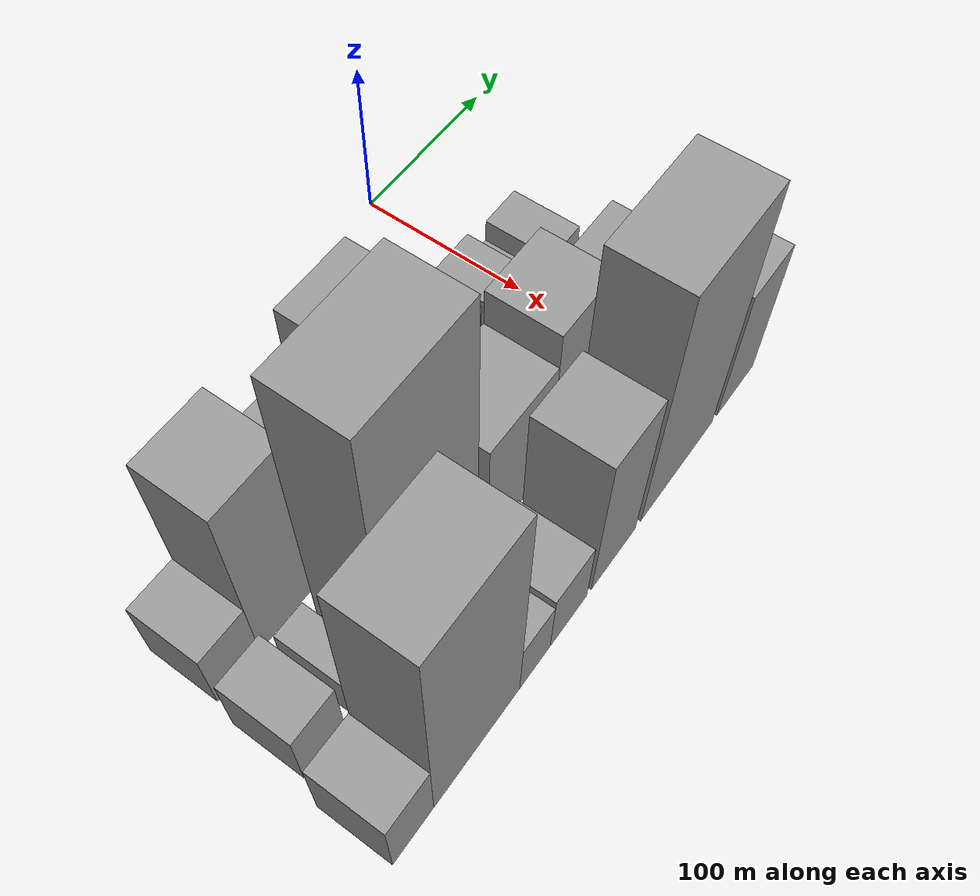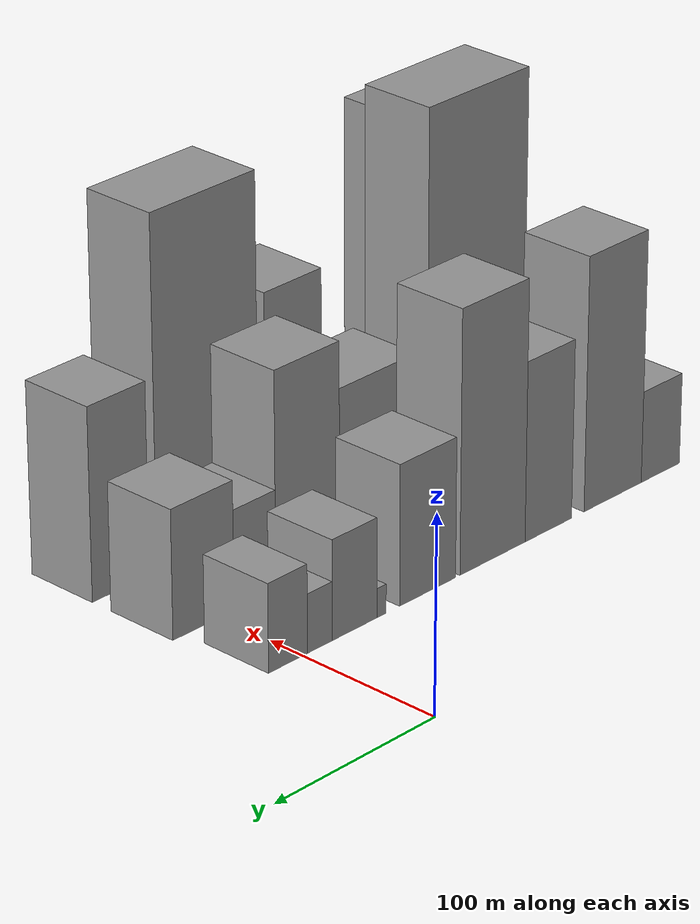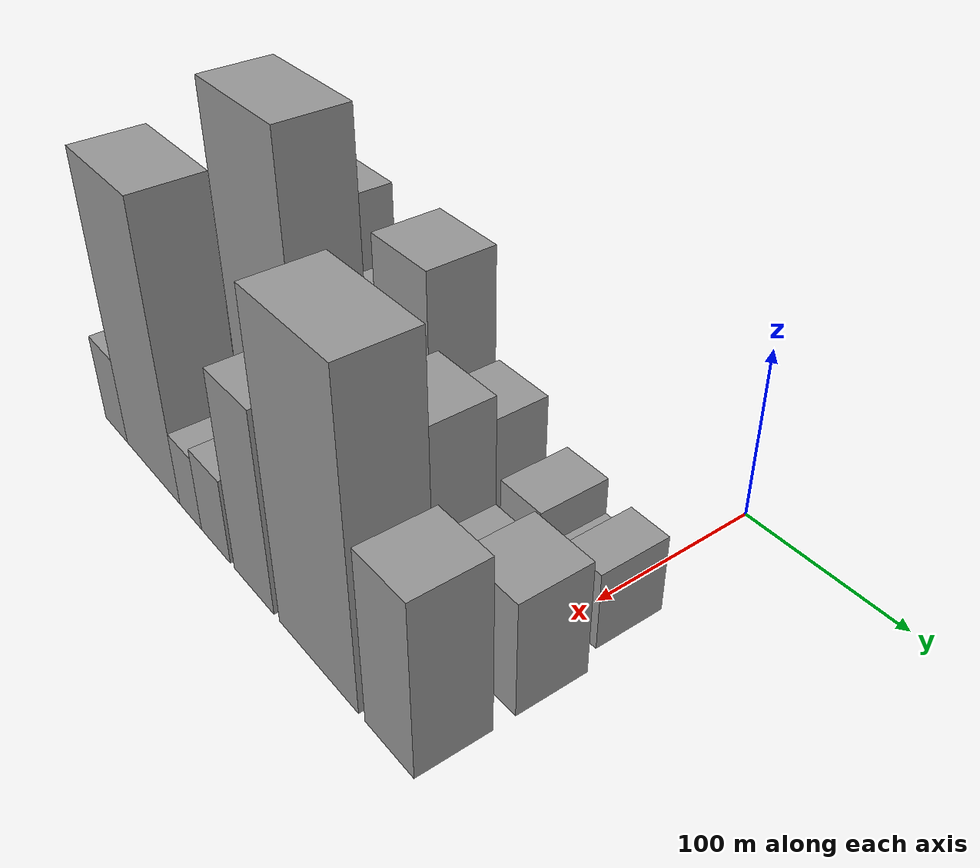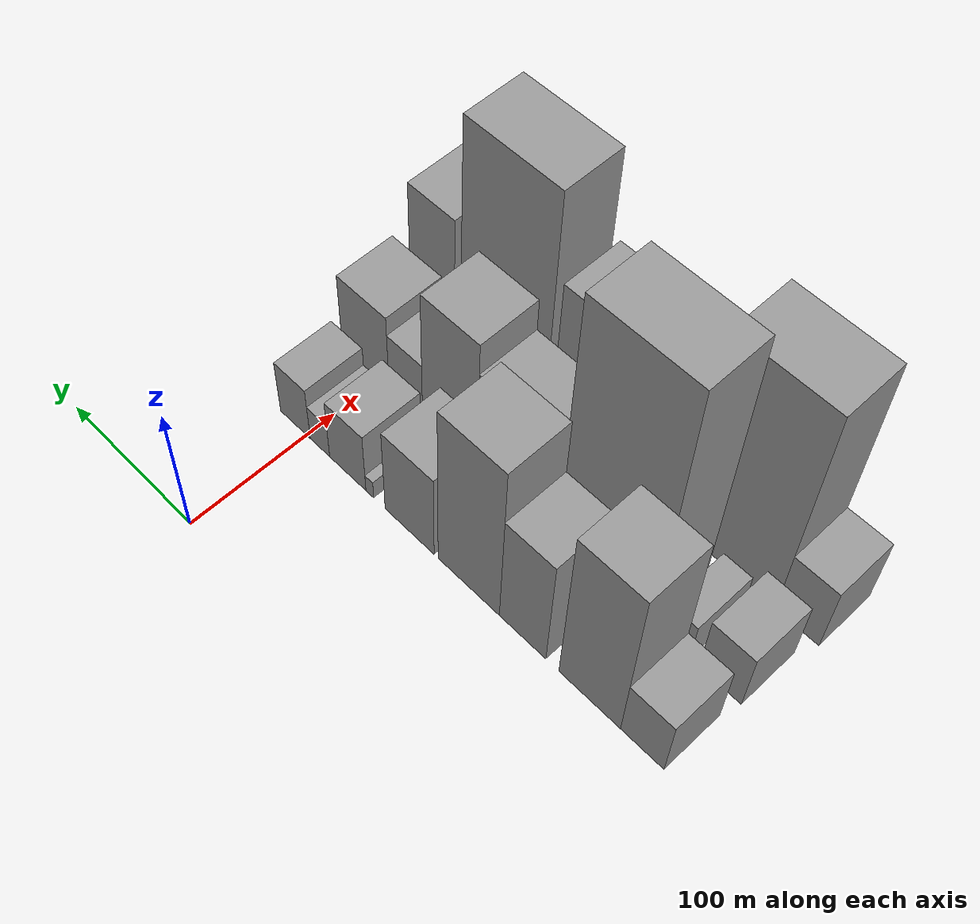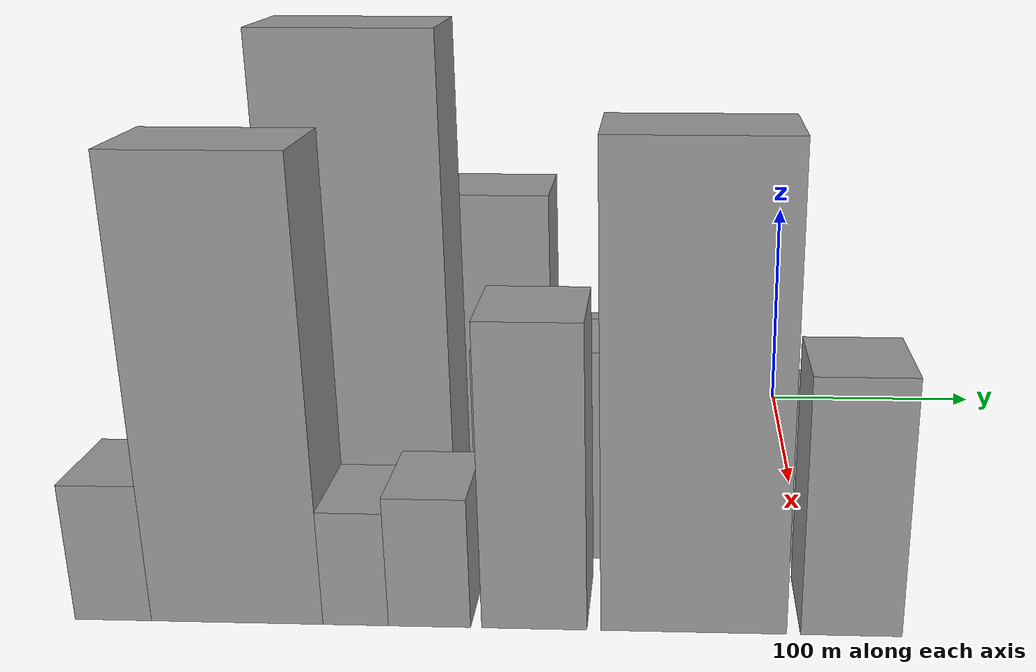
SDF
<sdf version="1.6">
 <world name="default">
  <model name="building_9">
   <static>1</static>
   <pose>100.0000 -246.7180 0 0.000000 0.000000 0.000000</pose>
   <link name="link">
    <pose>0 0 24.00 0 0 0</pose>
    <collision name="collision"><geometry><box><size>40.0000 28.3378 48.0000</size></box></geometry></collision>
    <visual name="visual">
     <cast_shadows>0</cast_shadows>
     <geometry><box><size>40.0000 28.3378 48.0000</size></box></geometry>
     <material>
      <script>
       <uri>model://grey_wall/materials/scripts</uri>
       <uri>model://grey_wall/materials/textures</uri>
       <name>vrc/grey_wall</name>
      </script>
     </material>
    </visual>
   </link>
  </model>
  <model name="building_10">
   <static>1</static>
   <pose>100.0000 -211.7277 0 0.000000 0.000000 0.000000</pose>
   <link name="link">
    <pose>0 0 66.00 0 0 0</pose>
    <collision name="collision"><geometry><box><size>40.0000 41.6429 132.0000</size></box></geometry></collision>
    <visual name="visual">
     <cast_shadows>0</cast_shadows>
     <geometry><box><size>40.0000 41.6429 132.0000</size></box></geometry>
     <material>
      <script>
       <uri>model://grey_wall/materials/scripts</uri>
       <uri>model://grey_wall/materials/textures</uri>
       <name>vrc/grey_wall</name>
      </script>
     </material>
    </visual>
   </link>
  </model>
  <model name="building_11">
   <static>1</static>
   <pose>100.0000 -165.4333 0 0.000000 0.000000 0.000000</pose>
   <link name="link">
    <pose>0 0 46.50 0 0 0</pose>
    <collision name="collision"><geometry><box><size>40.0000 32.9459 93.0000</size></box></geometry></collision>
    <visual name="visual">
     <cast_shadows>0</cast_shadows>
     <geometry><box><size>40.0000 32.9459 93.0000</size></box></geometry>
     <material>
      <script>
       <uri>model://grey_wall/materials/scripts</uri>
       <uri>model://grey_wall/materials/textures</uri>
       <name>vrc/grey_wall</name>
      </script>
     </material>
    </visual>
   </link>
  </model>
  <model name="building_12">
   <static>1</static>
   <pose>100.0000 -126.4425 0 0.000000 0.000000 0.000000</pose>
   <link name="link">
    <pose>0 0 67.50 0 0 0</pose>
    <collision name="collision"><geometry><box><size>40.0000 45.0357 135.0000</size></box></geometry></collision>
    <visual name="visual">
     <cast_shadows>0</cast_shadows>
     <geometry><box><size>40.0000 45.0357 135.0000</size></box></geometry>
     <material>
      <script>
       <uri>model://grey_wall/materials/scripts</uri>
       <uri>model://grey_wall/materials/textures</uri>
       <name>vrc/grey_wall</name>
      </script>
     </material>
    </visual>
   </link>
  </model>
  <model name="building_13">
   <static>1</static>
   <pose>100.0000 -82.1082 0 0.000000 0.000000 0.000000</pose>
   <link name="link">
    <pose>0 0 36.00 0 0 0</pose>
    <collision name="collision"><geometry><box><size>40.0000 37.6330 72.0000</size></box></geometry></collision>
    <visual name="visual">
     <cast_shadows>0</cast_shadows>
     <geometry><box><size>40.0000 37.6330 72.0000</size></box></geometry>
     <material>
      <script>
       <uri>model://grey_wall/materials/scripts</uri>
       <uri>model://grey_wall/materials/textures</uri>
       <name>vrc/grey_wall</name>
      </script>
     </material>
    </visual>
   </link>
  </model>
  <model name="building_14">
   <static>1</static>
   <pose>100.0000 -51.2164 0 0.000000 0.000000 0.000000</pose>
   <link name="link">
    <pose>0 0 7.50 0 0 0</pose>
    <collision name="collision"><geometry><box><size>40.0000 6.1504 15.0000</size></box></geometry></collision>
    <visual name="visual">
     <cast_shadows>0</cast_shadows>
     <geometry><box><size>40.0000 6.1504 15.0000</size></box></geometry>
     <material>
      <script>
       <uri>model://grey_wall/materials/scripts</uri>
       <uri>model://grey_wall/materials/textures</uri>
       <name>vrc/grey_wall</name>
      </script>
     </material>
    </visual>
   </link>
  </model>
  <model name="building_15">
   <static>1</static>
   <pose>100.0000 -33.5812 0 0.000000 0.000000 0.000000</pose>
   <link name="link">
    <pose>0 0 25.50 0 0 0</pose>
    <collision name="collision"><geometry><box><size>40.0000 29.1201 51.0000</size></box></geometry></collision>
    <visual name="visual">
     <cast_shadows>0</cast_shadows>
     <geometry><box><size>40.0000 29.1201 51.0000</size></box></geometry>
     <material>
      <script>
       <uri>model://grey_wall/materials/scripts</uri>
       <uri>model://grey_wall/materials/textures</uri>
       <name>vrc/grey_wall</name>
      </script>
     </material>
    </visual>
   </link>
  </model>
  <model name="building_16">
   <static>1</static>
   <pose>100.0000 -11.0467 0 0.000000 0.000000 0.000000</pose>
   <link name="link">
    <pose>0 0 15.00 0 0 0</pose>
    <collision name="collision"><geometry><box><size>40.0000 15.9488 30.0000</size></box></geometry></collision>
    <visual name="visual">
     <cast_shadows>0</cast_shadows>
     <geometry><box><size>40.0000 15.9488 30.0000</size></box></geometry>
     <material>
      <script>
       <uri>model://grey_wall/materials/scripts</uri>
       <uri>model://grey_wall/materials/textures</uri>
       <name>vrc/grey_wall</name>
      </script>
     </material>
    </visual>
   </link>
  </model>
  <model name="building_17">
   <static>1</static>
   <pose>100.0000 9.3485 0 0.000000 0.000000 0.000000</pose>
   <link name="link">
    <pose>0 0 22.50 0 0 0</pose>
    <collision name="collision"><geometry><box><size>40.0000 24.8416 45.0000</size></box></geometry></collision>
    <visual name="visual">
     <cast_shadows>0</cast_shadows>
     <geometry><box><size>40.0000 24.8416 45.0000</size></box></geometry>
     <material>
      <script>
       <uri>model://grey_wall/materials/scripts</uri>
       <uri>model://grey_wall/materials/textures</uri>
       <name>vrc/grey_wall</name>
      </script>
     </material>
    </visual>
   </link>
  </model>
  <model name="building_42">
   <static>1</static>
   <pose>152.0000 -250.4712 0 0.000000 0.000000 0.000000</pose>
   <link name="link">
    <pose>0 0 24.00 0 0 0</pose>
    <collision name="collision"><geometry><box><size>40.0000 27.5900 48.0000</size></box></geometry></collision>
    <visual name="visual">
     <cast_shadows>0</cast_shadows>
     <geometry><box><size>40.0000 27.5900 48.0000</size></box></geometry>
     <material>
      <script>
       <uri>model://grey_wall/materials/scripts</uri>
       <uri>model://grey_wall/materials/textures</uri>
       <name>vrc/grey_wall</name>
      </script>
     </material>
    </visual>
   </link>
  </model>
  <model name="building_43">
   <static>1</static>
   <pose>152.0000 -221.2421 0 0.000000 0.000000 0.000000</pose>
   <link name="link">
    <pose>0 0 16.50 0 0 0</pose>
    <collision name="collision"><geometry><box><size>40.0000 18.8682 33.0000</size></box></geometry></collision>
    <visual name="visual">
     <cast_shadows>0</cast_shadows>
     <geometry><box><size>40.0000 18.8682 33.0000</size></box></geometry>
     <material>
      <script>
       <uri>model://grey_wall/materials/scripts</uri>
       <uri>model://grey_wall/materials/textures</uri>
       <name>vrc/grey_wall</name>
      </script>
     </material>
    </visual>
   </link>
  </model>
  <model name="building_44">
   <static>1</static>
   <pose>152.0000 -171.8982 0 0.000000 0.000000 0.000000</pose>
   <link name="link">
    <pose>0 0 103.50 0 0 0</pose>
    <collision name="collision"><geometry><box><size>40.0000 67.8195 207.0000</size></box></geometry></collision>
    <visual name="visual">
     <cast_shadows>0</cast_shadows>
     <geometry><box><size>40.0000 67.8195 207.0000</size></box></geometry>
     <material>
      <script>
       <uri>model://grey_wall/materials/scripts</uri>
       <uri>model://grey_wall/materials/textures</uri>
       <name>vrc/grey_wall</name>
      </script>
     </material>
    </visual>
   </link>
  </model>
  <model name="building_45">
   <static>1</static>
   <pose>152.0000 -104.2163 0 0.000000 0.000000 0.000000</pose>
   <link name="link">
    <pose>0 0 43.50 0 0 0</pose>
    <collision name="collision"><geometry><box><size>40.0000 51.5444 87.0000</size></box></geometry></collision>
    <visual name="visual">
     <cast_shadows>0</cast_shadows>
     <geometry><box><size>40.0000 51.5444 87.0000</size></box></geometry>
     <material>
      <script>
       <uri>model://grey_wall/materials/scripts</uri>
       <uri>model://grey_wall/materials/textures</uri>
       <name>vrc/grey_wall</name>
      </script>
     </material>
    </visual>
   </link>
  </model>
  <model name="building_46">
   <static>1</static>
   <pose>152.0000 -57.3280 0 0.000000 0.000000 0.000000</pose>
   <link name="link">
    <pose>0 0 55.50 0 0 0</pose>
    <collision name="collision"><geometry><box><size>40.0000 42.2322 111.0000</size></box></geometry></collision>
    <visual name="visual">
     <cast_shadows>0</cast_shadows>
     <geometry><box><size>40.0000 42.2322 111.0000</size></box></geometry>
     <material>
      <script>
       <uri>model://grey_wall/materials/scripts</uri>
       <uri>model://grey_wall/materials/textures</uri>
       <name>vrc/grey_wall</name>
      </script>
     </material>
    </visual>
   </link>
  </model>
  <model name="building_47">
   <static>1</static>
   <pose>152.0000 -22.6772 0 0.000000 0.000000 0.000000</pose>
   <link name="link">
    <pose>0 0 25.50 0 0 0</pose>
    <collision name="collision"><geometry><box><size>40.0000 27.0694 51.0000</size></box></geometry></collision>
    <visual name="visual">
     <cast_shadows>0</cast_shadows>
     <geometry><box><size>40.0000 27.0694 51.0000</size></box></geometry>
     <material>
      <script>
       <uri>model://grey_wall/materials/scripts</uri>
       <uri>model://grey_wall/materials/textures</uri>
       <name>vrc/grey_wall</name>
      </script>
     </material>
    </visual>
   </link>
  </model>
  <model name="building_48">
   <static>1</static>
   <pose>152.0000 10.2735 0 0.000000 0.000000 0.000000</pose>
   <link name="link">
    <pose>0 0 33.00 0 0 0</pose>
    <collision name="collision"><geometry><box><size>40.0000 38.8319 66.0000</size></box></geometry></collision>
    <visual name="visual">
     <cast_shadows>0</cast_shadows>
     <geometry><box><size>40.0000 38.8319 66.0000</size></box></geometry>
     <material>
      <script>
       <uri>model://grey_wall/materials/scripts</uri>
       <uri>model://grey_wall/materials/textures</uri>
       <name>vrc/grey_wall</name>
      </script>
     </material>
    </visual>
   </link>
  </model>
  <model name="building_74">
   <static>1</static>
   <pose>204.0000 -256.0348 0 0.000000 0.000000 0.000000</pose>
   <link name="link">
    <pose>0 0 27.00 0 0 0</pose>
    <collision name="collision"><geometry><box><size>40.0000 28.2523 54.0000</size></box></geometry></collision>
    <visual name="visual">
     <cast_shadows>0</cast_shadows>
     <geometry><box><size>40.0000 28.2523 54.0000</size></box></geometry>
     <material>
      <script>
       <uri>model://grey_wall/materials/scripts</uri>
       <uri>model://grey_wall/materials/textures</uri>
       <name>vrc/grey_wall</name>
      </script>
     </material>
    </visual>
   </link>
  </model>
  <model name="building_75">
   <static>1</static>
   <pose>204.0000 -210.3603 0 0.000000 0.000000 0.000000</pose>
   <link name="link">
    <pose>0 0 87.00 0 0 0</pose>
    <collision name="collision"><geometry><box><size>40.0000 63.0967 174.0000</size></box></geometry></collision>
    <visual name="visual">
     <cast_shadows>0</cast_shadows>
     <geometry><box><size>40.0000 63.0967 174.0000</size></box></geometry>
     <material>
      <script>
       <uri>model://grey_wall/materials/scripts</uri>
       <uri>model://grey_wall/materials/textures</uri>
       <name>vrc/grey_wall</name>
      </script>
     </material>
    </visual>
   </link>
  </model>
  <model name="building_76">
   <static>1</static>
   <pose>204.0000 -166.8560 0 0.000000 0.000000 0.000000</pose>
   <link name="link">
    <pose>0 0 22.50 0 0 0</pose>
    <collision name="collision"><geometry><box><size>40.0000 23.9120 45.0000</size></box></geometry></collision>
    <visual name="visual">
     <cast_shadows>0</cast_shadows>
     <geometry><box><size>40.0000 23.9120 45.0000</size></box></geometry>
     <material>
      <script>
       <uri>model://grey_wall/materials/scripts</uri>
       <uri>model://grey_wall/materials/textures</uri>
       <name>vrc/grey_wall</name>
      </script>
     </material>
    </visual>
   </link>
  </model>
  <model name="building_77">
   <static>1</static>
   <pose>204.0000 -139.9393 0 0.000000 0.000000 0.000000</pose>
   <link name="link">
    <pose>0 0 25.50 0 0 0</pose>
    <collision name="collision"><geometry><box><size>40.0000 29.9214 51.0000</size></box></geometry></collision>
    <visual name="visual">
     <cast_shadows>0</cast_shadows>
     <geometry><box><size>40.0000 29.9214 51.0000</size></box></geometry>
     <material>
      <script>
       <uri>model://grey_wall/materials/scripts</uri>
       <uri>model://grey_wall/materials/textures</uri>
       <name>vrc/grey_wall</name>
      </script>
     </material>
    </visual>
   </link>
  </model>
  <model name="building_78">
   <static>1</static>
   <pose>204.0000 -101.9505 0 0.000000 0.000000 0.000000</pose>
   <link name="link">
    <pose>0 0 58.50 0 0 0</pose>
    <collision name="collision"><geometry><box><size>40.0000 38.0561 117.0000</size></box></geometry></collision>
    <visual name="visual">
     <cast_shadows>0</cast_shadows>
     <geometry><box><size>40.0000 38.0561 117.0000</size></box></geometry>
     <material>
      <script>
       <uri>model://grey_wall/materials/scripts</uri>
       <uri>model://grey_wall/materials/textures</uri>
       <name>vrc/grey_wall</name>
      </script>
     </material>
    </visual>
   </link>
  </model>
  <model name="building_79">
   <static>1</static>
   <pose>204.0000 -44.6009 0 0.000000 0.000000 0.000000</pose>
   <link name="link">
    <pose>0 0 90.00 0 0 0</pose>
    <collision name="collision"><geometry><box><size>40.0000 66.6431 180.0000</size></box></geometry></collision>
    <visual name="visual">
     <cast_shadows>0</cast_shadows>
     <geometry><box><size>40.0000 66.6431 180.0000</size></box></geometry>
     <material>
      <script>
       <uri>model://grey_wall/materials/scripts</uri>
       <uri>model://grey_wall/materials/textures</uri>
       <name>vrc/grey_wall</name>
      </script>
     </material>
    </visual>
   </link>
  </model>
  <model name="building_80">
   <static>1</static>
   <pose>204.0000 11.7721 0 0.000000 0.000000 0.000000</pose>
   <link name="link">
    <pose>0 0 49.50 0 0 0</pose>
    <collision name="collision"><geometry><box><size>40.0000 36.1029 99.0000</size></box></geometry></collision>
    <visual name="visual">
     <cast_shadows>0</cast_shadows>
     <geometry><box><size>40.0000 36.1029 99.0000</size></box></geometry>
     <material>
      <script>
       <uri>model://grey_wall/materials/scripts</uri>
       <uri>model://grey_wall/materials/textures</uri>
       <name>vrc/grey_wall</name>
      </script>
     </material>
    </visual>
   </link>
  </model>
 </world>
</sdf>
